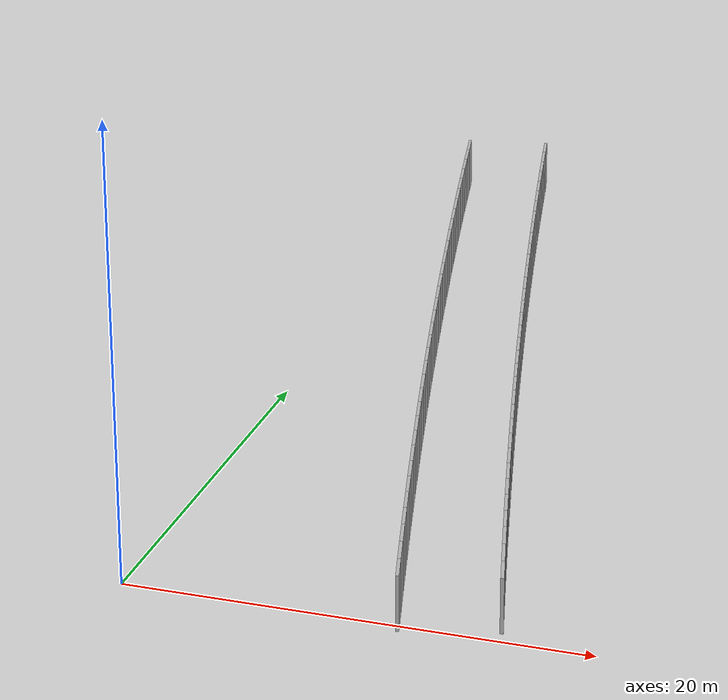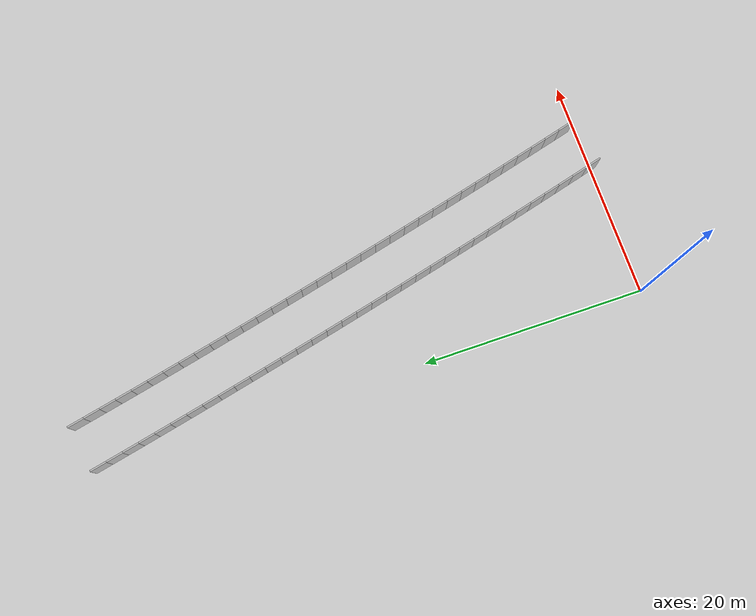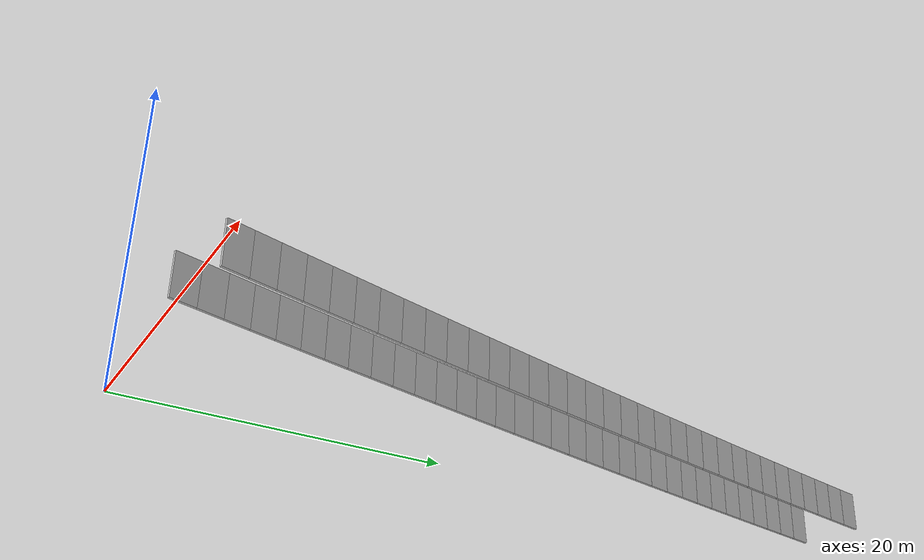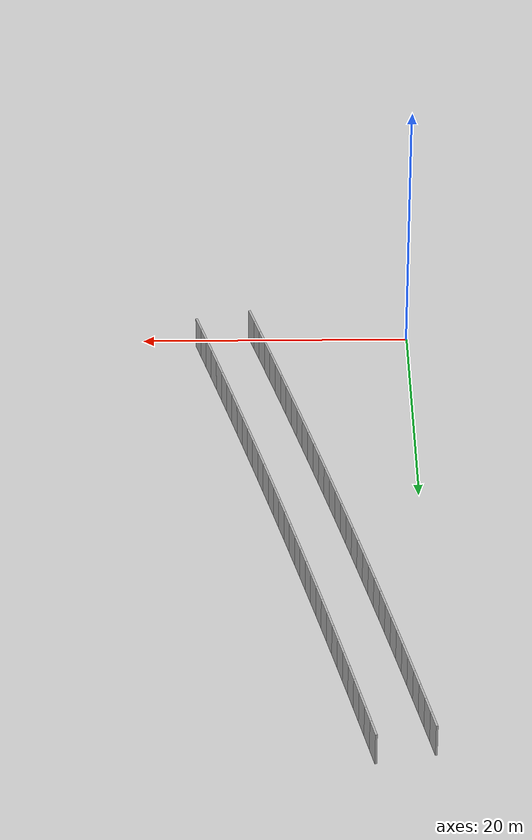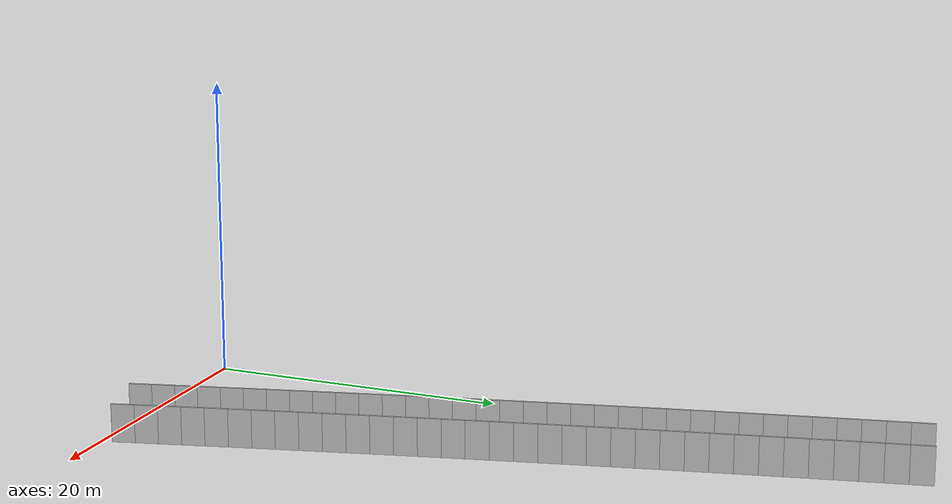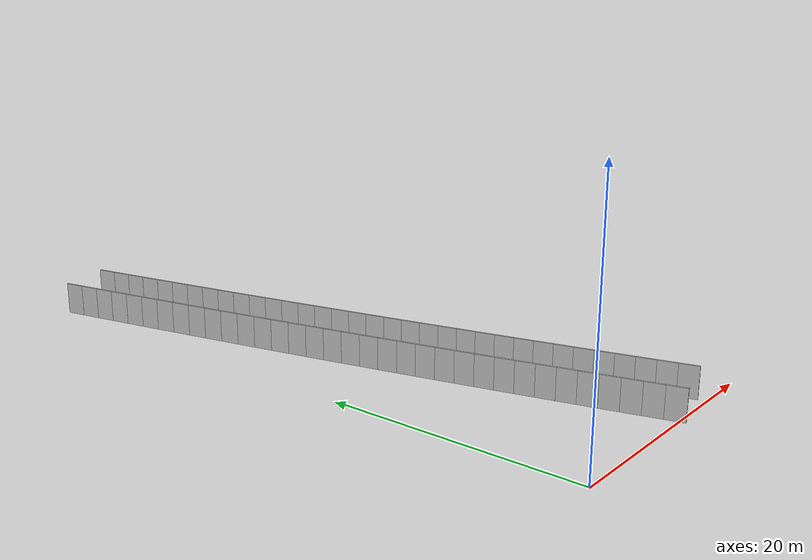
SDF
<?xml version="1.0" ?>
<sdf version="1.6">
  <model name="sps_0321">
    <pose frame="">0 0 0 0 -0 0</pose>
    <static>1</static>
    <self_collide>0</self_collide>
    <allow_auto_disable>0</allow_auto_disable>
    <link name="Wall5338">
      <kinematic>0</kinematic>
      <gravity>1</gravity>
      <self_collide>0</self_collide>
      <collision name="collision">
        <geometry>
          <box>
            <size>1.49645 0.15 2.5</size>
          </box>
        </geometry>
        <pose frame="">0 0 0 0 -0 0</pose>
      </collision>
      <visual name="visual">
        <geometry>
          <box>
            <size>1.49645 0.15 2.5</size>
          </box>
        </geometry>
        <pose frame="">0 0 0 0 -0 0</pose>
        <cast_shadows>1</cast_shadows>
        <transparency>0.0</transparency>
      </visual>
      <pose frame="">4.40697 49.3969 1.25 0 0 -1.36471</pose>
    </link>
    <link name="Wall5339">
      <kinematic>0</kinematic>
      <gravity>1</gravity>
      <self_collide>0</self_collide>
      <collision name="collision">
        <geometry>
          <box>
            <size>1.49658 0.15 2.5</size>
          </box>
        </geometry>
        <pose frame="">0 0 0 0 -0 0</pose>
      </collision>
      <visual name="visual">
        <geometry>
          <box>
            <size>1.49658 0.15 2.5</size>
          </box>
        </geometry>
        <pose frame="">0 0 0 0 -0 0</pose>
        <cast_shadows>1</cast_shadows>
        <transparency>0.0</transparency>
      </visual>
      <pose frame="">4.71438 47.9323 1.25 0 0 -1.36311</pose>
    </link>
    <link name="Wall5340">
      <kinematic>0</kinematic>
      <gravity>1</gravity>
      <self_collide>0</self_collide>
      <collision name="collision">
        <geometry>
          <box>
            <size>1.49647 0.15 2.5</size>
          </box>
        </geometry>
        <pose frame="">0 0 0 0 -0 0</pose>
      </collision>
      <visual name="visual">
        <geometry>
          <box>
            <size>1.49647 0.15 2.5</size>
          </box>
        </geometry>
        <pose frame="">0 0 0 0 -0 0</pose>
        <cast_shadows>1</cast_shadows>
        <transparency>0.0</transparency>
      </visual>
      <pose frame="">5.02416 46.4682 1.25 0 0 -1.36147</pose>
    </link>
    <link name="Wall5341">
      <kinematic>0</kinematic>
      <gravity>1</gravity>
      <self_collide>0</self_collide>
      <collision name="collision">
        <geometry>
          <box>
            <size>1.49653 0.15 2.5</size>
          </box>
        </geometry>
        <pose frame="">0 0 0 0 -0 0</pose>
      </collision>
      <visual name="visual">
        <geometry>
          <box>
            <size>1.49653 0.15 2.5</size>
          </box>
        </geometry>
        <pose frame="">0 0 0 0 -0 0</pose>
        <cast_shadows>1</cast_shadows>
        <transparency>0.0</transparency>
      </visual>
      <pose frame="">5.33626 45.0046 1.25 0 0 -1.35993</pose>
    </link>
    <link name="Wall5342">
      <kinematic>0</kinematic>
      <gravity>1</gravity>
      <self_collide>0</self_collide>
      <collision name="collision">
        <geometry>
          <box>
            <size>1.49648 0.15 2.5</size>
          </box>
        </geometry>
        <pose frame="">0 0 0 0 -0 0</pose>
      </collision>
      <visual name="visual">
        <geometry>
          <box>
            <size>1.49648 0.15 2.5</size>
          </box>
        </geometry>
        <pose frame="">0 0 0 0 -0 0</pose>
        <cast_shadows>1</cast_shadows>
        <transparency>0.0</transparency>
      </visual>
      <pose frame="">5.65066 43.5415 1.25 0 0 -1.35834</pose>
    </link>
    <link name="Wall5343">
      <kinematic>0</kinematic>
      <gravity>1</gravity>
      <self_collide>0</self_collide>
      <collision name="collision">
        <geometry>
          <box>
            <size>1.49654 0.15 2.5</size>
          </box>
        </geometry>
        <pose frame="">0 0 0 0 -0 0</pose>
      </collision>
      <visual name="visual">
        <geometry>
          <box>
            <size>1.49654 0.15 2.5</size>
          </box>
        </geometry>
        <pose frame="">0 0 0 0 -0 0</pose>
        <cast_shadows>1</cast_shadows>
        <transparency>0.0</transparency>
      </visual>
      <pose frame="">5.96734 42.0789 1.25 0 0 -1.3568</pose>
    </link>
    <link name="Wall5344">
      <kinematic>0</kinematic>
      <gravity>1</gravity>
      <self_collide>0</self_collide>
      <collision name="collision">
        <geometry>
          <box>
            <size>1.49645 0.15 2.5</size>
          </box>
        </geometry>
        <pose frame="">0 0 0 0 -0 0</pose>
      </collision>
      <visual name="visual">
        <geometry>
          <box>
            <size>1.49645 0.15 2.5</size>
          </box>
        </geometry>
        <pose frame="">0 0 0 0 -0 0</pose>
        <cast_shadows>1</cast_shadows>
        <transparency>0.0</transparency>
      </visual>
      <pose frame="">6.28634 40.6168 1.25 0 0 -1.35516</pose>
    </link>
    <link name="Wall5345">
      <kinematic>0</kinematic>
      <gravity>1</gravity>
      <self_collide>0</self_collide>
      <collision name="collision">
        <geometry>
          <box>
            <size>1.49638 0.15 2.5</size>
          </box>
        </geometry>
        <pose frame="">0 0 0 0 -0 0</pose>
      </collision>
      <visual name="visual">
        <geometry>
          <box>
            <size>1.49638 0.15 2.5</size>
          </box>
        </geometry>
        <pose frame="">0 0 0 0 -0 0</pose>
        <cast_shadows>1</cast_shadows>
        <transparency>0.0</transparency>
      </visual>
      <pose frame="">6.60775 39.1553 1.25 0 0 -1.35348</pose>
    </link>
    <link name="Wall5346">
      <kinematic>0</kinematic>
      <gravity>1</gravity>
      <self_collide>0</self_collide>
      <collision name="collision">
        <geometry>
          <box>
            <size>1.49648 0.15 2.5</size>
          </box>
        </geometry>
        <pose frame="">0 0 0 0 -0 0</pose>
      </collision>
      <visual name="visual">
        <geometry>
          <box>
            <size>1.49648 0.15 2.5</size>
          </box>
        </geometry>
        <pose frame="">0 0 0 0 -0 0</pose>
        <cast_shadows>1</cast_shadows>
        <transparency>0.0</transparency>
      </visual>
      <pose frame="">6.93145 37.6943 1.25 0 0 -1.35203</pose>
    </link>
    <link name="Wall5347">
      <kinematic>0</kinematic>
      <gravity>1</gravity>
      <self_collide>0</self_collide>
      <collision name="collision">
        <geometry>
          <box>
            <size>1.4966 0.15 2.5</size>
          </box>
        </geometry>
        <pose frame="">0 0 0 0 -0 0</pose>
      </collision>
      <visual name="visual">
        <geometry>
          <box>
            <size>1.4966 0.15 2.5</size>
          </box>
        </geometry>
        <pose frame="">0 0 0 0 -0 0</pose>
        <cast_shadows>1</cast_shadows>
        <transparency>0.0</transparency>
      </visual>
      <pose frame="">7.25744 36.2337 1.25 0 0 -1.35038</pose>
    </link>
    <link name="Wall5348">
      <kinematic>0</kinematic>
      <gravity>1</gravity>
      <self_collide>0</self_collide>
      <collision name="collision">
        <geometry>
          <box>
            <size>1.49648 0.15 2.5</size>
          </box>
        </geometry>
        <pose frame="">0 0 0 0 -0 0</pose>
      </collision>
      <visual name="visual">
        <geometry>
          <box>
            <size>1.49648 0.15 2.5</size>
          </box>
        </geometry>
        <pose frame="">0 0 0 0 -0 0</pose>
        <cast_shadows>1</cast_shadows>
        <transparency>0.0</transparency>
      </visual>
      <pose frame="">7.58575 34.7736 1.25 0 0 -1.34886</pose>
    </link>
    <link name="Wall5349">
      <kinematic>0</kinematic>
      <gravity>1</gravity>
      <self_collide>0</self_collide>
      <collision name="collision">
        <geometry>
          <box>
            <size>1.49665 0.15 2.5</size>
          </box>
        </geometry>
        <pose frame="">0 0 0 0 -0 0</pose>
      </collision>
      <visual name="visual">
        <geometry>
          <box>
            <size>1.49665 0.15 2.5</size>
          </box>
        </geometry>
        <pose frame="">0 0 0 0 -0 0</pose>
        <cast_shadows>1</cast_shadows>
        <transparency>0.0</transparency>
      </visual>
      <pose frame="">7.91634 33.314 1.25 0 0 -1.34725</pose>
    </link>
    <link name="Wall5350">
      <kinematic>0</kinematic>
      <gravity>1</gravity>
      <self_collide>0</self_collide>
      <collision name="collision">
        <geometry>
          <box>
            <size>1.49638 0.15 2.5</size>
          </box>
        </geometry>
        <pose frame="">0 0 0 0 -0 0</pose>
      </collision>
      <visual name="visual">
        <geometry>
          <box>
            <size>1.49638 0.15 2.5</size>
          </box>
        </geometry>
        <pose frame="">0 0 0 0 -0 0</pose>
        <cast_shadows>1</cast_shadows>
        <transparency>0.0</transparency>
      </visual>
      <pose frame="">8.24926 31.855 1.25 0 0 -1.34566</pose>
    </link>
    <link name="Wall5351">
      <kinematic>0</kinematic>
      <gravity>1</gravity>
      <self_collide>0</self_collide>
      <collision name="collision">
        <geometry>
          <box>
            <size>1.49648 0.15 2.5</size>
          </box>
        </geometry>
        <pose frame="">0 0 0 0 -0 0</pose>
      </collision>
      <visual name="visual">
        <geometry>
          <box>
            <size>1.49648 0.15 2.5</size>
          </box>
        </geometry>
        <pose frame="">0 0 0 0 -0 0</pose>
        <cast_shadows>1</cast_shadows>
        <transparency>0.0</transparency>
      </visual>
      <pose frame="">8.58446 30.3966 1.25 0 0 -1.34409</pose>
    </link>
    <link name="Wall5352">
      <kinematic>0</kinematic>
      <gravity>1</gravity>
      <self_collide>0</self_collide>
      <collision name="collision">
        <geometry>
          <box>
            <size>1.49668 0.15 2.5</size>
          </box>
        </geometry>
        <pose frame="">0 0 0 0 -0 0</pose>
      </collision>
      <visual name="visual">
        <geometry>
          <box>
            <size>1.49668 0.15 2.5</size>
          </box>
        </geometry>
        <pose frame="">0 0 0 0 -0 0</pose>
        <cast_shadows>1</cast_shadows>
        <transparency>0.0</transparency>
      </visual>
      <pose frame="">8.92205 28.9386 1.25 0 0 -1.34244</pose>
    </link>
    <link name="Wall5353">
      <kinematic>0</kinematic>
      <gravity>1</gravity>
      <self_collide>0</self_collide>
      <collision name="collision">
        <geometry>
          <box>
            <size>1.49652 0.15 2.5</size>
          </box>
        </geometry>
        <pose frame="">0 0 0 0 -0 0</pose>
      </collision>
      <visual name="visual">
        <geometry>
          <box>
            <size>1.49652 0.15 2.5</size>
          </box>
        </geometry>
        <pose frame="">0 0 0 0 -0 0</pose>
        <cast_shadows>1</cast_shadows>
        <transparency>0.0</transparency>
      </visual>
      <pose frame="">9.26195 27.4811 1.25 0 0 -1.34091</pose>
    </link>
    <link name="Wall5354">
      <kinematic>0</kinematic>
      <gravity>1</gravity>
      <self_collide>0</self_collide>
      <collision name="collision">
        <geometry>
          <box>
            <size>1.49653 0.15 2.5</size>
          </box>
        </geometry>
        <pose frame="">0 0 0 0 -0 0</pose>
      </collision>
      <visual name="visual">
        <geometry>
          <box>
            <size>1.49653 0.15 2.5</size>
          </box>
        </geometry>
        <pose frame="">0 0 0 0 -0 0</pose>
        <cast_shadows>1</cast_shadows>
        <transparency>0.0</transparency>
      </visual>
      <pose frame="">9.60415 26.0242 1.25 0 0 -1.33928</pose>
    </link>
    <link name="Wall5355">
      <kinematic>0</kinematic>
      <gravity>1</gravity>
      <self_collide>0</self_collide>
      <collision name="collision">
        <geometry>
          <box>
            <size>1.49646 0.15 2.5</size>
          </box>
        </geometry>
        <pose frame="">0 0 0 0 -0 0</pose>
      </collision>
      <visual name="visual">
        <geometry>
          <box>
            <size>1.49646 0.15 2.5</size>
          </box>
        </geometry>
        <pose frame="">0 0 0 0 -0 0</pose>
        <cast_shadows>1</cast_shadows>
        <transparency>0.0</transparency>
      </visual>
      <pose frame="">9.94866 24.5679 1.25 0 0 -1.33772</pose>
    </link>
    <link name="Wall5356">
      <kinematic>0</kinematic>
      <gravity>1</gravity>
      <self_collide>0</self_collide>
      <collision name="collision">
        <geometry>
          <box>
            <size>1.49646 0.15 2.5</size>
          </box>
        </geometry>
        <pose frame="">0 0 0 0 -0 0</pose>
      </collision>
      <visual name="visual">
        <geometry>
          <box>
            <size>1.49646 0.15 2.5</size>
          </box>
        </geometry>
        <pose frame="">0 0 0 0 -0 0</pose>
        <cast_shadows>1</cast_shadows>
        <transparency>0.0</transparency>
      </visual>
      <pose frame="">10.2955 23.1122 1.25 0 0 -1.33613</pose>
    </link>
    <link name="Wall5357">
      <kinematic>0</kinematic>
      <gravity>1</gravity>
      <self_collide>0</self_collide>
      <collision name="collision">
        <geometry>
          <box>
            <size>1.49651 0.15 2.5</size>
          </box>
        </geometry>
        <pose frame="">0 0 0 0 -0 0</pose>
      </collision>
      <visual name="visual">
        <geometry>
          <box>
            <size>1.49651 0.15 2.5</size>
          </box>
        </geometry>
        <pose frame="">0 0 0 0 -0 0</pose>
        <cast_shadows>1</cast_shadows>
        <transparency>0.0</transparency>
      </visual>
      <pose frame="">10.6446 21.657 1.25 0 0 -1.33458</pose>
    </link>
    <link name="Wall5358">
      <kinematic>0</kinematic>
      <gravity>1</gravity>
      <self_collide>0</self_collide>
      <collision name="collision">
        <geometry>
          <box>
            <size>1.49654 0.15 2.5</size>
          </box>
        </geometry>
        <pose frame="">0 0 0 0 -0 0</pose>
      </collision>
      <visual name="visual">
        <geometry>
          <box>
            <size>1.49654 0.15 2.5</size>
          </box>
        </geometry>
        <pose frame="">0 0 0 0 -0 0</pose>
        <cast_shadows>1</cast_shadows>
        <transparency>0.0</transparency>
      </visual>
      <pose frame="">10.996 20.2023 1.25 0 0 -1.33295</pose>
    </link>
    <link name="Wall5359">
      <kinematic>0</kinematic>
      <gravity>1</gravity>
      <self_collide>0</self_collide>
      <collision name="collision">
        <geometry>
          <box>
            <size>1.4967 0.15 2.5</size>
          </box>
        </geometry>
        <pose frame="">0 0 0 0 -0 0</pose>
      </collision>
      <visual name="visual">
        <geometry>
          <box>
            <size>1.4967 0.15 2.5</size>
          </box>
        </geometry>
        <pose frame="">0 0 0 0 -0 0</pose>
        <cast_shadows>1</cast_shadows>
        <transparency>0.0</transparency>
      </visual>
      <pose frame="">11.3497 18.7481 1.25 0 0 -1.33147</pose>
    </link>
    <link name="Wall5360">
      <kinematic>0</kinematic>
      <gravity>1</gravity>
      <self_collide>0</self_collide>
      <collision name="collision">
        <geometry>
          <box>
            <size>1.49644 0.15 2.5</size>
          </box>
        </geometry>
        <pose frame="">0 0 0 0 -0 0</pose>
      </collision>
      <visual name="visual">
        <geometry>
          <box>
            <size>1.49644 0.15 2.5</size>
          </box>
        </geometry>
        <pose frame="">0 0 0 0 -0 0</pose>
        <cast_shadows>1</cast_shadows>
        <transparency>0.0</transparency>
      </visual>
      <pose frame="">11.7056 17.2945 1.25 0 0 -1.32978</pose>
    </link>
    <link name="Wall5361">
      <kinematic>0</kinematic>
      <gravity>1</gravity>
      <self_collide>0</self_collide>
      <collision name="collision">
        <geometry>
          <box>
            <size>1.49639 0.15 2.5</size>
          </box>
        </geometry>
        <pose frame="">0 0 0 0 -0 0</pose>
      </collision>
      <visual name="visual">
        <geometry>
          <box>
            <size>1.49639 0.15 2.5</size>
          </box>
        </geometry>
        <pose frame="">0 0 0 0 -0 0</pose>
        <cast_shadows>1</cast_shadows>
        <transparency>0.0</transparency>
      </visual>
      <pose frame="">12.064 15.8416 1.25 0 0 -1.32822</pose>
    </link>
    <link name="Wall5362">
      <kinematic>0</kinematic>
      <gravity>1</gravity>
      <self_collide>0</self_collide>
      <collision name="collision">
        <geometry>
          <box>
            <size>1.49659 0.15 2.5</size>
          </box>
        </geometry>
        <pose frame="">0 0 0 0 -0 0</pose>
      </collision>
      <visual name="visual">
        <geometry>
          <box>
            <size>1.49659 0.15 2.5</size>
          </box>
        </geometry>
        <pose frame="">0 0 0 0 -0 0</pose>
        <cast_shadows>1</cast_shadows>
        <transparency>0.0</transparency>
      </visual>
      <pose frame="">12.4246 14.3892 1.25 0 0 -1.32666</pose>
    </link>
    <link name="Wall5363">
      <kinematic>0</kinematic>
      <gravity>1</gravity>
      <self_collide>0</self_collide>
      <collision name="collision">
        <geometry>
          <box>
            <size>1.49654 0.15 2.5</size>
          </box>
        </geometry>
        <pose frame="">0 0 0 0 -0 0</pose>
      </collision>
      <visual name="visual">
        <geometry>
          <box>
            <size>1.49654 0.15 2.5</size>
          </box>
        </geometry>
        <pose frame="">0 0 0 0 -0 0</pose>
        <cast_shadows>1</cast_shadows>
        <transparency>0.0</transparency>
      </visual>
      <pose frame="">12.7874 12.9373 1.25 0 0 -1.3251</pose>
    </link>
    <link name="Wall5364">
      <kinematic>0</kinematic>
      <gravity>1</gravity>
      <self_collide>0</self_collide>
      <collision name="collision">
        <geometry>
          <box>
            <size>1.49653 0.15 2.5</size>
          </box>
        </geometry>
        <pose frame="">0 0 0 0 -0 0</pose>
      </collision>
      <visual name="visual">
        <geometry>
          <box>
            <size>1.49653 0.15 2.5</size>
          </box>
        </geometry>
        <pose frame="">0 0 0 0 -0 0</pose>
        <cast_shadows>1</cast_shadows>
        <transparency>0.0</transparency>
      </visual>
      <pose frame="">13.1526 11.486 1.25 0 0 -1.32345</pose>
    </link>
    <link name="Wall5365">
      <kinematic>0</kinematic>
      <gravity>1</gravity>
      <self_collide>0</self_collide>
      <collision name="collision">
        <geometry>
          <box>
            <size>1.49654 0.15 2.5</size>
          </box>
        </geometry>
        <pose frame="">0 0 0 0 -0 0</pose>
      </collision>
      <visual name="visual">
        <geometry>
          <box>
            <size>1.49654 0.15 2.5</size>
          </box>
        </geometry>
        <pose frame="">0 0 0 0 -0 0</pose>
        <cast_shadows>1</cast_shadows>
        <transparency>0.0</transparency>
      </visual>
      <pose frame="">13.5201 10.0353 1.25 0 0 -1.32194</pose>
    </link>
    <link name="Wall5366">
      <kinematic>0</kinematic>
      <gravity>1</gravity>
      <self_collide>0</self_collide>
      <collision name="collision">
        <geometry>
          <box>
            <size>1.49649 0.15 2.5</size>
          </box>
        </geometry>
        <pose frame="">0 0 0 0 -0 0</pose>
      </collision>
      <visual name="visual">
        <geometry>
          <box>
            <size>1.49649 0.15 2.5</size>
          </box>
        </geometry>
        <pose frame="">0 0 0 0 -0 0</pose>
        <cast_shadows>1</cast_shadows>
        <transparency>0.0</transparency>
      </visual>
      <pose frame="">13.8899 8.58519 1.25 0 0 -1.32025</pose>
    </link>
    <link name="Wall5367">
      <kinematic>0</kinematic>
      <gravity>1</gravity>
      <self_collide>0</self_collide>
      <collision name="collision">
        <geometry>
          <box>
            <size>1.49649 0.15 2.5</size>
          </box>
        </geometry>
        <pose frame="">0 0 0 0 -0 0</pose>
      </collision>
      <visual name="visual">
        <geometry>
          <box>
            <size>1.49649 0.15 2.5</size>
          </box>
        </geometry>
        <pose frame="">0 0 0 0 -0 0</pose>
        <cast_shadows>1</cast_shadows>
        <transparency>0.0</transparency>
      </visual>
      <pose frame="">14.262 7.1357 1.25 0 0 -1.31877</pose>
    </link>
    <link name="Wall5368">
      <kinematic>0</kinematic>
      <gravity>1</gravity>
      <self_collide>0</self_collide>
      <collision name="collision">
        <geometry>
          <box>
            <size>1.49651 0.15 2.5</size>
          </box>
        </geometry>
        <pose frame="">0 0 0 0 -0 0</pose>
      </collision>
      <visual name="visual">
        <geometry>
          <box>
            <size>1.49651 0.15 2.5</size>
          </box>
        </geometry>
        <pose frame="">0 0 0 0 -0 0</pose>
        <cast_shadows>1</cast_shadows>
        <transparency>0.0</transparency>
      </visual>
      <pose frame="">14.6364 5.68678 1.25 0 0 -1.31709</pose>
    </link>
    <link name="Wall5369">
      <kinematic>0</kinematic>
      <gravity>1</gravity>
      <self_collide>0</self_collide>
      <collision name="collision">
        <geometry>
          <box>
            <size>1.49647 0.15 2.5</size>
          </box>
        </geometry>
        <pose frame="">0 0 0 0 -0 0</pose>
      </collision>
      <visual name="visual">
        <geometry>
          <box>
            <size>1.49647 0.15 2.5</size>
          </box>
        </geometry>
        <pose frame="">0 0 0 0 -0 0</pose>
        <cast_shadows>1</cast_shadows>
        <transparency>0.0</transparency>
      </visual>
      <pose frame="">15.0131 4.23848 1.25 0 0 -1.31557</pose>
    </link>
    <link name="Wall5370">
      <kinematic>0</kinematic>
      <gravity>1</gravity>
      <self_collide>0</self_collide>
      <collision name="collision">
        <geometry>
          <box>
            <size>1.49649 0.15 2.5</size>
          </box>
        </geometry>
        <pose frame="">0 0 0 0 -0 0</pose>
      </collision>
      <visual name="visual">
        <geometry>
          <box>
            <size>1.49649 0.15 2.5</size>
          </box>
        </geometry>
        <pose frame="">0 0 0 0 -0 0</pose>
        <cast_shadows>1</cast_shadows>
        <transparency>0.0</transparency>
      </visual>
      <pose frame="">15.3921 2.79079 1.25 0 0 -1.31393</pose>
    </link>
    <link name="Wall5371">
      <kinematic>0</kinematic>
      <gravity>1</gravity>
      <self_collide>0</self_collide>
      <collision name="collision">
        <geometry>
          <box>
            <size>1.49647 0.15 2.5</size>
          </box>
        </geometry>
        <pose frame="">0 0 0 0 -0 0</pose>
      </collision>
      <visual name="visual">
        <geometry>
          <box>
            <size>1.49647 0.15 2.5</size>
          </box>
        </geometry>
        <pose frame="">0 0 0 0 -0 0</pose>
        <cast_shadows>1</cast_shadows>
        <transparency>0.0</transparency>
      </visual>
      <pose frame="">15.7735 1.3437 1.25 0 0 -1.31236</pose>
    </link>
    <link name="Wall7134">
      <kinematic>0</kinematic>
      <gravity>1</gravity>
      <self_collide>0</self_collide>
      <collision name="collision">
        <geometry>
          <box>
            <size>1.50301 0.15 2.5</size>
          </box>
        </geometry>
        <pose frame="">0 0 0 0 -0 0</pose>
      </collision>
      <visual name="visual">
        <geometry>
          <box>
            <size>1.50301 0.15 2.5</size>
          </box>
        </geometry>
        <pose frame="">0 0 0 0 -0 0</pose>
        <cast_shadows>1</cast_shadows>
        <transparency>0.0</transparency>
      </visual>
      <pose frame="">0.355247 48.5493 1.25 0 0 -1.36467</pose>
    </link>
    <link name="Wall7135">
      <kinematic>0</kinematic>
      <gravity>1</gravity>
      <self_collide>0</self_collide>
      <collision name="collision">
        <geometry>
          <box>
            <size>1.50308 0.15 2.5</size>
          </box>
        </geometry>
        <pose frame="">0 0 0 0 -0 0</pose>
      </collision>
      <visual name="visual">
        <geometry>
          <box>
            <size>1.50308 0.15 2.5</size>
          </box>
        </geometry>
        <pose frame="">0 0 0 0 -0 0</pose>
        <cast_shadows>1</cast_shadows>
        <transparency>0.0</transparency>
      </visual>
      <pose frame="">0.664054 47.0783 1.25 0 0 -1.36306</pose>
    </link>
    <link name="Wall7136">
      <kinematic>0</kinematic>
      <gravity>1</gravity>
      <self_collide>0</self_collide>
      <collision name="collision">
        <geometry>
          <box>
            <size>1.50303 0.15 2.5</size>
          </box>
        </geometry>
        <pose frame="">0 0 0 0 -0 0</pose>
      </collision>
      <visual name="visual">
        <geometry>
          <box>
            <size>1.50303 0.15 2.5</size>
          </box>
        </geometry>
        <pose frame="">0 0 0 0 -0 0</pose>
        <cast_shadows>1</cast_shadows>
        <transparency>0.0</transparency>
      </visual>
      <pose frame="">0.975242 45.6078 1.25 0 0 -1.36144</pose>
    </link>
    <link name="Wall7137">
      <kinematic>0</kinematic>
      <gravity>1</gravity>
      <self_collide>0</self_collide>
      <collision name="collision">
        <geometry>
          <box>
            <size>1.50333 0.15 2.5</size>
          </box>
        </geometry>
        <pose frame="">0 0 0 0 -0 0</pose>
      </collision>
      <visual name="visual">
        <geometry>
          <box>
            <size>1.50333 0.15 2.5</size>
          </box>
        </geometry>
        <pose frame="">0 0 0 0 -0 0</pose>
        <cast_shadows>1</cast_shadows>
        <transparency>0.0</transparency>
      </visual>
      <pose frame="">1.28875 44.1377 1.25 0 0 -1.35994</pose>
    </link>
    <link name="Wall7138">
      <kinematic>0</kinematic>
      <gravity>1</gravity>
      <self_collide>0</self_collide>
      <collision name="collision">
        <geometry>
          <box>
            <size>1.50299 0.15 2.5</size>
          </box>
        </geometry>
        <pose frame="">0 0 0 0 -0 0</pose>
      </collision>
      <visual name="visual">
        <geometry>
          <box>
            <size>1.50299 0.15 2.5</size>
          </box>
        </geometry>
        <pose frame="">0 0 0 0 -0 0</pose>
        <cast_shadows>1</cast_shadows>
        <transparency>0.0</transparency>
      </visual>
      <pose frame="">1.60458 42.6681 1.25 0 0 -1.35828</pose>
    </link>
    <link name="Wall7139">
      <kinematic>0</kinematic>
      <gravity>1</gravity>
      <self_collide>0</self_collide>
      <collision name="collision">
        <geometry>
          <box>
            <size>1.50308 0.15 2.5</size>
          </box>
        </geometry>
        <pose frame="">0 0 0 0 -0 0</pose>
      </collision>
      <visual name="visual">
        <geometry>
          <box>
            <size>1.50308 0.15 2.5</size>
          </box>
        </geometry>
        <pose frame="">0 0 0 0 -0 0</pose>
        <cast_shadows>1</cast_shadows>
        <transparency>0.0</transparency>
      </visual>
      <pose frame="">1.92266 41.1991 1.25 0 0 -1.35684</pose>
    </link>
    <link name="Wall7140">
      <kinematic>0</kinematic>
      <gravity>1</gravity>
      <self_collide>0</self_collide>
      <collision name="collision">
        <geometry>
          <box>
            <size>1.50277 0.15 2.5</size>
          </box>
        </geometry>
        <pose frame="">0 0 0 0 -0 0</pose>
      </collision>
      <visual name="visual">
        <geometry>
          <box>
            <size>1.50277 0.15 2.5</size>
          </box>
        </geometry>
        <pose frame="">0 0 0 0 -0 0</pose>
        <cast_shadows>1</cast_shadows>
        <transparency>0.0</transparency>
      </visual>
      <pose frame="">2.24303 39.7307 1.25 0 0 -1.35513</pose>
    </link>
    <link name="Wall7141">
      <kinematic>0</kinematic>
      <gravity>1</gravity>
      <self_collide>0</self_collide>
      <collision name="collision">
        <geometry>
          <box>
            <size>1.50318 0.15 2.5</size>
          </box>
        </geometry>
        <pose frame="">0 0 0 0 -0 0</pose>
      </collision>
      <visual name="visual">
        <geometry>
          <box>
            <size>1.50318 0.15 2.5</size>
          </box>
        </geometry>
        <pose frame="">0 0 0 0 -0 0</pose>
        <cast_shadows>1</cast_shadows>
        <transparency>0.0</transparency>
      </visual>
      <pose frame="">2.56585 38.2628 1.25 0 0 -1.35352</pose>
    </link>
    <link name="Wall7142">
      <kinematic>0</kinematic>
      <gravity>1</gravity>
      <self_collide>0</self_collide>
      <collision name="collision">
        <geometry>
          <box>
            <size>1.50322 0.15 2.5</size>
          </box>
        </geometry>
        <pose frame="">0 0 0 0 -0 0</pose>
      </collision>
      <visual name="visual">
        <geometry>
          <box>
            <size>1.50322 0.15 2.5</size>
          </box>
        </geometry>
        <pose frame="">0 0 0 0 -0 0</pose>
        <cast_shadows>1</cast_shadows>
        <transparency>0.0</transparency>
      </visual>
      <pose frame="">2.89095 36.7952 1.25 0 0 -1.35207</pose>
    </link>
    <link name="Wall7143">
      <kinematic>0</kinematic>
      <gravity>1</gravity>
      <self_collide>0</self_collide>
      <collision name="collision">
        <geometry>
          <box>
            <size>1.50298 0.15 2.5</size>
          </box>
        </geometry>
        <pose frame="">0 0 0 0 -0 0</pose>
      </collision>
      <visual name="visual">
        <geometry>
          <box>
            <size>1.50298 0.15 2.5</size>
          </box>
        </geometry>
        <pose frame="">0 0 0 0 -0 0</pose>
        <cast_shadows>1</cast_shadows>
        <transparency>0.0</transparency>
      </visual>
      <pose frame="">3.21834 35.3282 1.25 0 0 -1.35037</pose>
    </link>
    <link name="Wall7144">
      <kinematic>0</kinematic>
      <gravity>1</gravity>
      <self_collide>0</self_collide>
      <collision name="collision">
        <geometry>
          <box>
            <size>1.50304 0.15 2.5</size>
          </box>
        </geometry>
        <pose frame="">0 0 0 0 -0 0</pose>
      </collision>
      <visual name="visual">
        <geometry>
          <box>
            <size>1.50304 0.15 2.5</size>
          </box>
        </geometry>
        <pose frame="">0 0 0 0 -0 0</pose>
        <cast_shadows>1</cast_shadows>
        <transparency>0.0</transparency>
      </visual>
      <pose frame="">3.54806 33.8618 1.25 0 0 -1.34889</pose>
    </link>
    <link name="Wall7145">
      <kinematic>0</kinematic>
      <gravity>1</gravity>
      <self_collide>0</self_collide>
      <collision name="collision">
        <geometry>
          <box>
            <size>1.5028 0.15 2.5</size>
          </box>
        </geometry>
        <pose frame="">0 0 0 0 -0 0</pose>
      </collision>
      <visual name="visual">
        <geometry>
          <box>
            <size>1.5028 0.15 2.5</size>
          </box>
        </geometry>
        <pose frame="">0 0 0 0 -0 0</pose>
        <cast_shadows>1</cast_shadows>
        <transparency>0.0</transparency>
      </visual>
      <pose frame="">3.88006 32.396 1.25 0 0 -1.34722</pose>
    </link>
    <link name="Wall7146">
      <kinematic>0</kinematic>
      <gravity>1</gravity>
      <self_collide>0</self_collide>
      <collision name="collision">
        <geometry>
          <box>
            <size>1.50316 0.15 2.5</size>
          </box>
        </geometry>
        <pose frame="">0 0 0 0 -0 0</pose>
      </collision>
      <visual name="visual">
        <geometry>
          <box>
            <size>1.50316 0.15 2.5</size>
          </box>
        </geometry>
        <pose frame="">0 0 0 0 -0 0</pose>
        <cast_shadows>1</cast_shadows>
        <transparency>0.0</transparency>
      </visual>
      <pose frame="">4.21447 30.9307 1.25 0 0 -1.34561</pose>
    </link>
    <link name="Wall7147">
      <kinematic>0</kinematic>
      <gravity>1</gravity>
      <self_collide>0</self_collide>
      <collision name="collision">
        <geometry>
          <box>
            <size>1.50322 0.15 2.5</size>
          </box>
        </geometry>
        <pose frame="">0 0 0 0 -0 0</pose>
      </collision>
      <visual name="visual">
        <geometry>
          <box>
            <size>1.50322 0.15 2.5</size>
          </box>
        </geometry>
        <pose frame="">0 0 0 0 -0 0</pose>
        <cast_shadows>1</cast_shadows>
        <transparency>0.0</transparency>
      </visual>
      <pose frame="">4.55117 29.4657 1.25 0 0 -1.34416</pose>
    </link>
    <link name="Wall7148">
      <kinematic>0</kinematic>
      <gravity>1</gravity>
      <self_collide>0</self_collide>
      <collision name="collision">
        <geometry>
          <box>
            <size>1.503 0.15 2.5</size>
          </box>
        </geometry>
        <pose frame="">0 0 0 0 -0 0</pose>
      </collision>
      <visual name="visual">
        <geometry>
          <box>
            <size>1.503 0.15 2.5</size>
          </box>
        </geometry>
        <pose frame="">0 0 0 0 -0 0</pose>
        <cast_shadows>1</cast_shadows>
        <transparency>0.0</transparency>
      </visual>
      <pose frame="">4.89016 28.0013 1.25 0 0 -1.34246</pose>
    </link>
    <link name="Wall7149">
      <kinematic>0</kinematic>
      <gravity>1</gravity>
      <self_collide>0</self_collide>
      <collision name="collision">
        <geometry>
          <box>
            <size>1.50318 0.15 2.5</size>
          </box>
        </geometry>
        <pose frame="">0 0 0 0 -0 0</pose>
      </collision>
      <visual name="visual">
        <geometry>
          <box>
            <size>1.50318 0.15 2.5</size>
          </box>
        </geometry>
        <pose frame="">0 0 0 0 -0 0</pose>
        <cast_shadows>1</cast_shadows>
        <transparency>0.0</transparency>
      </visual>
      <pose frame="">5.23156 26.5375 1.25 0 0 -1.34087</pose>
    </link>
    <link name="Wall7150">
      <kinematic>0</kinematic>
      <gravity>1</gravity>
      <self_collide>0</self_collide>
      <collision name="collision">
        <geometry>
          <box>
            <size>1.50309 0.15 2.5</size>
          </box>
        </geometry>
        <pose frame="">0 0 0 0 -0 0</pose>
      </collision>
      <visual name="visual">
        <geometry>
          <box>
            <size>1.50309 0.15 2.5</size>
          </box>
        </geometry>
        <pose frame="">0 0 0 0 -0 0</pose>
        <cast_shadows>1</cast_shadows>
        <transparency>0.0</transparency>
      </visual>
      <pose frame="">5.57525 25.0742 1.25 0 0 -1.33935</pose>
    </link>
    <link name="Wall7151">
      <kinematic>0</kinematic>
      <gravity>1</gravity>
      <self_collide>0</self_collide>
      <collision name="collision">
        <geometry>
          <box>
            <size>1.50306 0.15 2.5</size>
          </box>
        </geometry>
        <pose frame="">0 0 0 0 -0 0</pose>
      </collision>
      <visual name="visual">
        <geometry>
          <box>
            <size>1.50306 0.15 2.5</size>
          </box>
        </geometry>
        <pose frame="">0 0 0 0 -0 0</pose>
        <cast_shadows>1</cast_shadows>
        <transparency>0.0</transparency>
      </visual>
      <pose frame="">5.92126 23.6115 1.25 0 0 -1.33768</pose>
    </link>
    <link name="Wall7152">
      <kinematic>0</kinematic>
      <gravity>1</gravity>
      <self_collide>0</self_collide>
      <collision name="collision">
        <geometry>
          <box>
            <size>1.50314 0.15 2.5</size>
          </box>
        </geometry>
        <pose frame="">0 0 0 0 -0 0</pose>
      </collision>
      <visual name="visual">
        <geometry>
          <box>
            <size>1.50314 0.15 2.5</size>
          </box>
        </geometry>
        <pose frame="">0 0 0 0 -0 0</pose>
        <cast_shadows>1</cast_shadows>
        <transparency>0.0</transparency>
      </visual>
      <pose frame="">6.26955 22.1493 1.25 0 0 -1.33623</pose>
    </link>
    <link name="Wall7153">
      <kinematic>0</kinematic>
      <gravity>1</gravity>
      <self_collide>0</self_collide>
      <collision name="collision">
        <geometry>
          <box>
            <size>1.50317 0.15 2.5</size>
          </box>
        </geometry>
        <pose frame="">0 0 0 0 -0 0</pose>
      </collision>
      <visual name="visual">
        <geometry>
          <box>
            <size>1.50317 0.15 2.5</size>
          </box>
        </geometry>
        <pose frame="">0 0 0 0 -0 0</pose>
        <cast_shadows>1</cast_shadows>
        <transparency>0.0</transparency>
      </visual>
      <pose frame="">6.62014 20.6876 1.25 0 0 -1.33456</pose>
    </link>
    <link name="Wall7154">
      <kinematic>0</kinematic>
      <gravity>1</gravity>
      <self_collide>0</self_collide>
      <collision name="collision">
        <geometry>
          <box>
            <size>1.50304 0.15 2.5</size>
          </box>
        </geometry>
        <pose frame="">0 0 0 0 -0 0</pose>
      </collision>
      <visual name="visual">
        <geometry>
          <box>
            <size>1.50304 0.15 2.5</size>
          </box>
        </geometry>
        <pose frame="">0 0 0 0 -0 0</pose>
        <cast_shadows>1</cast_shadows>
        <transparency>0.0</transparency>
      </visual>
      <pose frame="">6.97304 19.2265 1.25 0 0 -1.33304</pose>
    </link>
    <link name="Wall7155">
      <kinematic>0</kinematic>
      <gravity>1</gravity>
      <self_collide>0</self_collide>
      <collision name="collision">
        <geometry>
          <box>
            <size>1.50312 0.15 2.5</size>
          </box>
        </geometry>
        <pose frame="">0 0 0 0 -0 0</pose>
      </collision>
      <visual name="visual">
        <geometry>
          <box>
            <size>1.50312 0.15 2.5</size>
          </box>
        </geometry>
        <pose frame="">0 0 0 0 -0 0</pose>
        <cast_shadows>1</cast_shadows>
        <transparency>0.0</transparency>
      </visual>
      <pose frame="">7.32836 17.766 1.25 0 0 -1.33125</pose>
    </link>
    <link name="Wall7156">
      <kinematic>0</kinematic>
      <gravity>1</gravity>
      <self_collide>0</self_collide>
      <collision name="collision">
        <geometry>
          <box>
            <size>1.50304 0.15 2.5</size>
          </box>
        </geometry>
        <pose frame="">0 0 0 0 -0 0</pose>
      </collision>
      <visual name="visual">
        <geometry>
          <box>
            <size>1.50304 0.15 2.5</size>
          </box>
        </geometry>
        <pose frame="">0 0 0 0 -0 0</pose>
        <cast_shadows>1</cast_shadows>
        <transparency>0.0</transparency>
      </visual>
      <pose frame="">7.68606 16.3061 1.25 0 0 -1.32978</pose>
    </link>
    <link name="Wall7157">
      <kinematic>0</kinematic>
      <gravity>1</gravity>
      <self_collide>0</self_collide>
      <collision name="collision">
        <geometry>
          <box>
            <size>1.50305 0.15 2.5</size>
          </box>
        </geometry>
        <pose frame="">0 0 0 0 -0 0</pose>
      </collision>
      <visual name="visual">
        <geometry>
          <box>
            <size>1.50305 0.15 2.5</size>
          </box>
        </geometry>
        <pose frame="">0 0 0 0 -0 0</pose>
        <cast_shadows>1</cast_shadows>
        <transparency>0.0</transparency>
      </visual>
      <pose frame="">8.04595 14.8468 1.25 0 0 -1.32823</pose>
    </link>
    <link name="Wall7158">
      <kinematic>0</kinematic>
      <gravity>1</gravity>
      <self_collide>0</self_collide>
      <collision name="collision">
        <geometry>
          <box>
            <size>1.50297 0.15 2.5</size>
          </box>
        </geometry>
        <pose frame="">0 0 0 0 -0 0</pose>
      </collision>
      <visual name="visual">
        <geometry>
          <box>
            <size>1.50297 0.15 2.5</size>
          </box>
        </geometry>
        <pose frame="">0 0 0 0 -0 0</pose>
        <cast_shadows>1</cast_shadows>
        <transparency>0.0</transparency>
      </visual>
      <pose frame="">8.40816 13.3881 1.25 0 0 -1.32659</pose>
    </link>
    <link name="Wall7159">
      <kinematic>0</kinematic>
      <gravity>1</gravity>
      <self_collide>0</self_collide>
      <collision name="collision">
        <geometry>
          <box>
            <size>1.50315 0.15 2.5</size>
          </box>
        </geometry>
        <pose frame="">0 0 0 0 -0 0</pose>
      </collision>
      <visual name="visual">
        <geometry>
          <box>
            <size>1.50315 0.15 2.5</size>
          </box>
        </geometry>
        <pose frame="">0 0 0 0 -0 0</pose>
        <cast_shadows>1</cast_shadows>
        <transparency>0.0</transparency>
      </visual>
      <pose frame="">8.77267 11.9299 1.25 0 0 -1.32511</pose>
    </link>
    <link name="Wall7160">
      <kinematic>0</kinematic>
      <gravity>1</gravity>
      <self_collide>0</self_collide>
      <collision name="collision">
        <geometry>
          <box>
            <size>1.50314 0.15 2.5</size>
          </box>
        </geometry>
        <pose frame="">0 0 0 0 -0 0</pose>
      </collision>
      <visual name="visual">
        <geometry>
          <box>
            <size>1.50314 0.15 2.5</size>
          </box>
        </geometry>
        <pose frame="">0 0 0 0 -0 0</pose>
        <cast_shadows>1</cast_shadows>
        <transparency>0.0</transparency>
      </visual>
      <pose frame="">9.13946 10.4722 1.25 0 0 -1.32347</pose>
    </link>
    <link name="Wall7161">
      <kinematic>0</kinematic>
      <gravity>1</gravity>
      <self_collide>0</self_collide>
      <collision name="collision">
        <geometry>
          <box>
            <size>1.50308 0.15 2.5</size>
          </box>
        </geometry>
        <pose frame="">0 0 0 0 -0 0</pose>
      </collision>
      <visual name="visual">
        <geometry>
          <box>
            <size>1.50308 0.15 2.5</size>
          </box>
        </geometry>
        <pose frame="">0 0 0 0 -0 0</pose>
        <cast_shadows>1</cast_shadows>
        <transparency>0.0</transparency>
      </visual>
      <pose frame="">9.50854 9.01509 1.25 0 0 -1.32196</pose>
    </link>
    <link name="Wall7162">
      <kinematic>0</kinematic>
      <gravity>1</gravity>
      <self_collide>0</self_collide>
      <collision name="collision">
        <geometry>
          <box>
            <size>1.50292 0.15 2.5</size>
          </box>
        </geometry>
        <pose frame="">0 0 0 0 -0 0</pose>
      </collision>
      <visual name="visual">
        <geometry>
          <box>
            <size>1.50292 0.15 2.5</size>
          </box>
        </geometry>
        <pose frame="">0 0 0 0 -0 0</pose>
        <cast_shadows>1</cast_shadows>
        <transparency>0.0</transparency>
      </visual>
      <pose frame="">9.87994 7.5587 1.25 0 0 -1.32025</pose>
    </link>
    <link name="Wall7163">
      <kinematic>0</kinematic>
      <gravity>1</gravity>
      <self_collide>0</self_collide>
      <collision name="collision">
        <geometry>
          <box>
            <size>1.50311 0.15 2.5</size>
          </box>
        </geometry>
        <pose frame="">0 0 0 0 -0 0</pose>
      </collision>
      <visual name="visual">
        <geometry>
          <box>
            <size>1.50311 0.15 2.5</size>
          </box>
        </geometry>
        <pose frame="">0 0 0 0 -0 0</pose>
        <cast_shadows>1</cast_shadows>
        <transparency>0.0</transparency>
      </visual>
      <pose frame="">10.2537 6.10289 1.25 0 0 -1.31878</pose>
    </link>
    <link name="Wall7164">
      <kinematic>0</kinematic>
      <gravity>1</gravity>
      <self_collide>0</self_collide>
      <collision name="collision">
        <geometry>
          <box>
            <size>1.50306 0.15 2.5</size>
          </box>
        </geometry>
        <pose frame="">0 0 0 0 -0 0</pose>
      </collision>
      <visual name="visual">
        <geometry>
          <box>
            <size>1.50306 0.15 2.5</size>
          </box>
        </geometry>
        <pose frame="">0 0 0 0 -0 0</pose>
        <cast_shadows>1</cast_shadows>
        <transparency>0.0</transparency>
      </visual>
      <pose frame="">10.6297 4.6476 1.25 0 0 -1.31713</pose>
    </link>
    <link name="Wall7165">
      <kinematic>0</kinematic>
      <gravity>1</gravity>
      <self_collide>0</self_collide>
      <collision name="collision">
        <geometry>
          <box>
            <size>1.50312 0.15 2.5</size>
          </box>
        </geometry>
        <pose frame="">0 0 0 0 -0 0</pose>
      </collision>
      <visual name="visual">
        <geometry>
          <box>
            <size>1.50312 0.15 2.5</size>
          </box>
        </geometry>
        <pose frame="">0 0 0 0 -0 0</pose>
        <cast_shadows>1</cast_shadows>
        <transparency>0.0</transparency>
      </visual>
      <pose frame="">11.008 3.19292 1.25 0 0 -1.31551</pose>
    </link>
    <link name="Wall7166">
      <kinematic>0</kinematic>
      <gravity>1</gravity>
      <self_collide>0</self_collide>
      <collision name="collision">
        <geometry>
          <box>
            <size>1.50293 0.15 2.5</size>
          </box>
        </geometry>
        <pose frame="">0 0 0 0 -0 0</pose>
      </collision>
      <visual name="visual">
        <geometry>
          <box>
            <size>1.50293 0.15 2.5</size>
          </box>
        </geometry>
        <pose frame="">0 0 0 0 -0 0</pose>
        <cast_shadows>1</cast_shadows>
        <transparency>0.0</transparency>
      </visual>
      <pose frame="">11.3888 1.73891 1.25 0 0 -1.31392</pose>
    </link>
    <link name="Wall7167">
      <kinematic>0</kinematic>
      <gravity>1</gravity>
      <self_collide>0</self_collide>
      <collision name="collision">
        <geometry>
          <box>
            <size>1.50306 0.15 2.5</size>
          </box>
        </geometry>
        <pose frame="">0 0 0 0 -0 0</pose>
      </collision>
      <visual name="visual">
        <geometry>
          <box>
            <size>1.50306 0.15 2.5</size>
          </box>
        </geometry>
        <pose frame="">0 0 0 0 -0 0</pose>
        <cast_shadows>1</cast_shadows>
        <transparency>0.0</transparency>
      </visual>
      <pose frame="">11.7717 0.285506 1.25 0 0 -1.31247</pose>
    </link>
  </model>
</sdf>
